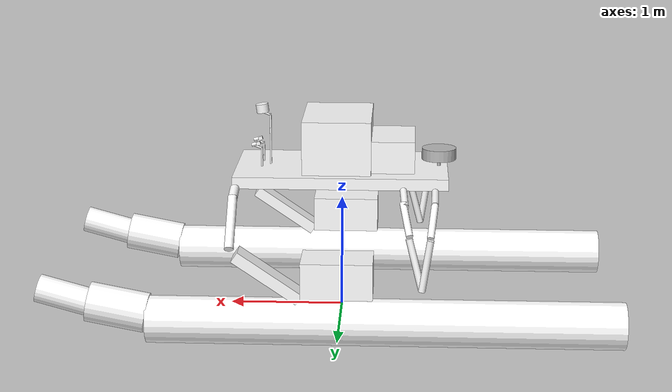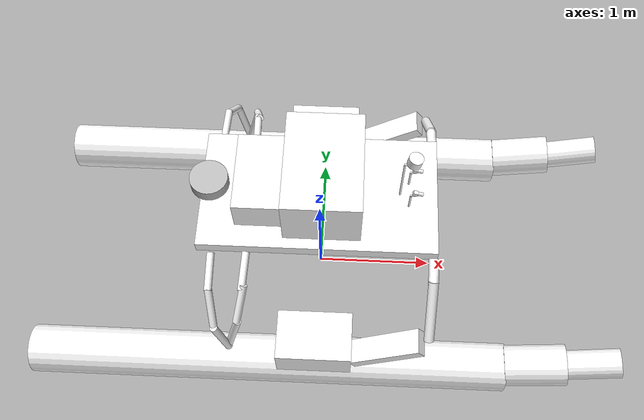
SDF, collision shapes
<?xml version="1.0" ?>
<sdf version='1.10'>
  <model name='WAM-V'>
    <link name='wamv/base_link'>
      <inertial>
        <pose>-0.0046408474923570614 0 0.25250289408128201 0 0 0</pose>
        <mass>249.62585000000001</mass>
        <inertia>
          <ixx>224.2484752353852</ixx>
          <ixy>0</ixy>
          <ixz>1.3323415055278161</ixz>
          <iyy>453.18088968234161</iyy>
          <iyz>0</iyz>
          <izz>499.50580567617101</izz>
        </inertia>
      </inertial>
      <collision name='wamv/base_link_fixed_joint_lump__left_float_collision'>
        <pose>-0.40000000000000002 1.03 0.20000000000000001 0 1.5707963267948966 0</pose>
        <geometry>
          <cylinder>
            <length>4</length>
            <radius>0.20000000000000001</radius>
          </cylinder>
        </geometry>
      </collision>
      <collision name='wamv/base_link_fixed_joint_lump__left_mid_float_collision_1'>
        <pose>1.8500000000000001 1.03 0.29999999999999999 0 1.3799999999999997 0</pose>
        <geometry>
          <cylinder>
            <length>0.5</length>
            <radius>0.17000000000000001</radius>
          </cylinder>
        </geometry>
      </collision>
      <collision name='wamv/base_link_fixed_joint_lump__left_front_float_collision_2'>
        <pose>2.2999999999999998 1.03 0.40000000000000002 0 1.3 0</pose>
        <geometry>
          <cylinder>
            <length>0.45000000000000001</length>
            <radius>0.12</radius>
          </cylinder>
        </geometry>
      </collision>
      <collision name='wamv/base_link_fixed_joint_lump__front_left_beam_lower_collision_3'>
        <pose>0.90000000000000002 0.84999999999999998 1 0.78000000000000003 0 0</pose>
        <geometry>
          <cylinder>
            <length>0.5</length>
            <radius>0.040000000000000001</radius>
          </cylinder>
        </geometry>
      </collision>
      <collision name='wamv/base_link_fixed_joint_lump__front_left_beam_upper_collision_4'>
        <pose>0.90000000000000002 0.59999999999999998 1.1799999999999999 1.3500000000000001 0 0</pose>
        <geometry>
          <cylinder>
            <length>0.20000000000000001</length>
            <radius>0.040000000000000001</radius>
          </cylinder>
        </geometry>
      </collision>
      <collision name='wamv/base_link_fixed_joint_lump__mid_left_beam_lower_collision_5'>
        <pose>-0.65000000000000002 0.98999999999999999 0.69999999999999996 0.099999999999999978 0.25000000000000006 0</pose>
        <geometry>
          <cylinder>
            <length>0.45000000000000001</length>
            <radius>0.029999999999999999</radius>
          </cylinder>
        </geometry>
      </collision>
      <collision name='wamv/base_link_fixed_joint_lump__mid_left_beam_medium_collision_6'>
        <pose>-0.56999999999999995 0.87 1.05 0.75000000000000033 0.25000000000000017 0</pose>
        <geometry>
          <cylinder>
            <length>0.32000000000000001</length>
            <radius>0.029999999999999999</radius>
          </cylinder>
        </geometry>
      </collision>
      <collision name='wamv/base_link_fixed_joint_lump__mid_left_beam_upper_collision_7'>
        <pose>-0.55000000000000004 0.65000000000000002 1.1699999999999999 1.3500000000000001 0.25000000000000011 0</pose>
        <geometry>
          <cylinder>
            <length>0.29999999999999999</length>
            <radius>0.029999999999999999</radius>
          </cylinder>
        </geometry>
      </collision>
      <collision name='wamv/base_link_fixed_joint_lump__rear_left_beam_lower_collision_8'>
        <pose>-0.73999999999999999 1.03 0.69999999999999996 0 -0.14999999999999999 0</pose>
        <geometry>
          <cylinder>
            <length>0.45000000000000001</length>
            <radius>0.029999999999999999</radius>
          </cylinder>
        </geometry>
      </collision>
      <collision name='wamv/base_link_fixed_joint_lump__rear_left_beam_medium_collision_9'>
        <pose>-0.79000000000000004 0.91000000000000003 1.05 0.75000000000000022 -0.14999999999999999 -1.4035390109491176e-17</pose>
        <geometry>
          <cylinder>
            <length>0.32000000000000001</length>
            <radius>0.029999999999999999</radius>
          </cylinder>
        </geometry>
      </collision>
      <collision name='wamv/base_link_fixed_joint_lump__rear_left_beam_upper_collision_10'>
        <pose>-0.81000000000000005 0.67000000000000004 1.1799999999999999 1.45 -0.14999999999999999 0</pose>
        <geometry>
          <cylinder>
            <length>0.29999999999999999</length>
            <radius>0.029999999999999999</radius>
          </cylinder>
        </geometry>
      </collision>
      <collision name='wamv/base_link_fixed_joint_lump__left_joint_collision_11'>
        <pose>0.57999999999999996 1.03 0.59999999999999998 0 -0.59999999999999987 0</pose>
        <geometry>
          <box>
            <size>0.65000000000000002 0.20000000000000001 0.10000000000000001</size>
          </box>
        </geometry>
      </collision>
      <collision name='wamv/base_link_fixed_joint_lump__right_float_collision_12'>
        <pose>-0.40000000000000002 -1.03 0.20000000000000001 0 1.5707963267948966 0</pose>
        <geometry>
          <cylinder>
            <length>4</length>
            <radius>0.20000000000000001</radius>
          </cylinder>
        </geometry>
      </collision>
      <collision name='wamv/base_link_fixed_joint_lump__right_mid_float_collision_13'>
        <pose>1.8500000000000001 -1.03 0.29999999999999999 0 1.3799999999999997 0</pose>
        <geometry>
          <cylinder>
            <length>0.5</length>
            <radius>0.17000000000000001</radius>
          </cylinder>
        </geometry>
      </collision>
      <collision name='wamv/base_link_fixed_joint_lump__right_front_float_collision_14'>
        <pose>2.2999999999999998 -1.03 0.40000000000000002 0 1.3 0</pose>
        <geometry>
          <cylinder>
            <length>0.45000000000000001</length>
            <radius>0.12</radius>
          </cylinder>
        </geometry>
      </collision>
      <collision name='wamv/base_link_fixed_joint_lump__front_right_beam_lower_collision_15'>
        <pose>0.90000000000000002 -0.84999999999999998 1 -0.78000000000000003 0 0</pose>
        <geometry>
          <cylinder>
            <length>0.5</length>
            <radius>0.040000000000000001</radius>
          </cylinder>
        </geometry>
      </collision>
      <collision name='wamv/base_link_fixed_joint_lump__front_right_beam_upper_collision_16'>
        <pose>0.90000000000000002 -0.59999999999999998 1.1799999999999999 -1.3500000000000001 0 0</pose>
        <geometry>
          <cylinder>
            <length>0.20000000000000001</length>
            <radius>0.040000000000000001</radius>
          </cylinder>
        </geometry>
      </collision>
      <collision name='wamv/base_link_fixed_joint_lump__mid_right_beam_lower_collision_17'>
        <pose>-0.65000000000000002 -0.98999999999999999 0.69999999999999996 -0.099999999999999978 0.25000000000000006 0</pose>
        <geometry>
          <cylinder>
            <length>0.45000000000000001</length>
            <radius>0.029999999999999999</radius>
          </cylinder>
        </geometry>
      </collision>
      <collision name='wamv/base_link_fixed_joint_lump__mid_right_beam_medium_collision_18'>
        <pose>-0.56999999999999995 -0.87 1.05 -0.75000000000000033 0.25000000000000017 0</pose>
        <geometry>
          <cylinder>
            <length>0.32000000000000001</length>
            <radius>0.029999999999999999</radius>
          </cylinder>
        </geometry>
      </collision>
      <collision name='wamv/base_link_fixed_joint_lump__mid_right_beam_upper_collision_19'>
        <pose>-0.55000000000000004 -0.65000000000000002 1.1699999999999999 -1.3500000000000001 0.25000000000000011 0</pose>
        <geometry>
          <cylinder>
            <length>0.29999999999999999</length>
            <radius>0.029999999999999999</radius>
          </cylinder>
        </geometry>
      </collision>
      <collision name='wamv/base_link_fixed_joint_lump__rear_right_beam_lower_collision_20'>
        <pose>-0.73999999999999999 -1.03 0.69999999999999996 0 -0.14999999999999999 0</pose>
        <geometry>
          <cylinder>
            <length>0.45000000000000001</length>
            <radius>0.029999999999999999</radius>
          </cylinder>
        </geometry>
      </collision>
      <collision name='wamv/base_link_fixed_joint_lump__rear_right_beam_medium_collision_21'>
        <pose>-0.79000000000000004 -0.91000000000000003 1.05 -0.75000000000000022 -0.14999999999999999 1.4035390109491176e-17</pose>
        <geometry>
          <cylinder>
            <length>0.32000000000000001</length>
            <radius>0.029999999999999999</radius>
          </cylinder>
        </geometry>
      </collision>
      <collision name='wamv/base_link_fixed_joint_lump__rear_right_beam_upper_collision_22'>
        <pose>-0.81000000000000005 -0.67000000000000004 1.1799999999999999 -1.45 -0.14999999999999999 0</pose>
        <geometry>
          <cylinder>
            <length>0.29999999999999999</length>
            <radius>0.029999999999999999</radius>
          </cylinder>
        </geometry>
      </collision>
      <collision name='wamv/base_link_fixed_joint_lump__right_joint_collision_23'>
        <pose>0.57999999999999996 -1.03 0.59999999999999998 0 -0.59999999999999987 0</pose>
        <geometry>
          <box>
            <size>0.65000000000000002 0.20000000000000001 0.10000000000000001</size>
          </box>
        </geometry>
      </collision>
      <collision name='wamv/base_link_fixed_joint_lump__top_base_collision_24'>
        <pose>0 0 1.25 0 0 0</pose>
        <geometry>
          <box>
            <size>1.8500000000000001 1 0.10000000000000001</size>
          </box>
        </geometry>
      </collision>
      <collision name='wamv/base_link_fixed_joint_lump__front_left_camera_post_collision_collision_25'>
        <pose>0.69999999999999996 0.10000000000000001 1.3847499999999999 0 0 0</pose>
        <geometry>
          <cylinder>
            <length>0.17649999999999999</length>
            <radius>0.0076</radius>
          </cylinder>
        </geometry>
      </collision>
      <collision name='wamv/base_link_fixed_joint_lump__front_left_camera_post_arm_collision_collision_26'>
        <pose>0.72999999999999998 0.10000000000000001 1.4730000000000001 -1.2042771838760871 5.5511151231257827e-17 -1.570796326794897</pose>
        <geometry>
          <cylinder>
            <length>0.065000000000000002</length>
            <radius>0.0080000000000000002</radius>
          </cylinder>
        </geometry>
      </collision>
      <collision name='wamv/base_link_fixed_joint_lump__front_left_camera_lens_collision_collision_27'>
        <pose>0.76738666487320317 0.10000000000000001 1.495341257188155 3.1415926535897931 1.3089969389957472 3.1415926535897931</pose>
        <geometry>
          <cylinder>
            <length>0.042000000000000003</length>
            <radius>0.014999999999999999</radius>
          </cylinder>
        </geometry>
      </collision>
      <collision name='wamv/base_link_fixed_joint_lump__front_left_camera_box_collision_collision_28'>
        <pose>0.73019852056107404 0.10000000000000001 1.5053057904246021 0 0.26179938779914941 0</pose>
        <geometry>
          <box>
            <size>0.035999999999999997 0.029999999999999999 0.029999999999999999</size>
          </box>
        </geometry>
      </collision>
      <collision name='wamv/base_link_fixed_joint_lump__front_right_camera_post_collision_collision_29'>
        <pose>0.69999999999999996 -0.10000000000000001 1.3847499999999999 0 0 0</pose>
        <geometry>
          <cylinder>
            <length>0.17649999999999999</length>
            <radius>0.0076</radius>
          </cylinder>
        </geometry>
      </collision>
      <collision name='wamv/base_link_fixed_joint_lump__front_right_camera_post_arm_collision_collision_30'>
        <pose>0.72999999999999998 -0.10000000000000001 1.4730000000000001 -1.2042771838760871 5.5511151231257827e-17 -1.570796326794897</pose>
        <geometry>
          <cylinder>
            <length>0.065000000000000002</length>
            <radius>0.0080000000000000002</radius>
          </cylinder>
        </geometry>
      </collision>
      <collision name='wamv/base_link_fixed_joint_lump__front_right_camera_lens_collision_collision_31'>
        <pose>0.76738666487320317 -0.10000000000000001 1.495341257188155 3.1415926535897931 1.3089969389957472 3.1415926535897931</pose>
        <geometry>
          <cylinder>
            <length>0.042000000000000003</length>
            <radius>0.014999999999999999</radius>
          </cylinder>
        </geometry>
      </collision>
      <collision name='wamv/base_link_fixed_joint_lump__front_right_camera_box_collision_collision_32'>
        <pose>0.73019852056107404 -0.10000000000000001 1.5053057904246021 0 0.26179938779914941 0</pose>
        <geometry>
          <box>
            <size>0.035999999999999997 0.029999999999999999 0.029999999999999999</size>
          </box>
        </geometry>
      </collision>
      <collision name='wamv/base_link_fixed_joint_lump__lidar_wamv_post_collision_collision_33'>
        <pose>0.62999999999999989 0 1.52325 0 0 0</pose>
        <geometry>
          <cylinder>
            <length>0.45350000000000013</length>
            <radius>0.0076</radius>
          </cylinder>
        </geometry>
      </collision>
      <collision name='wamv/base_link_fixed_joint_lump__lidar_wamv_post_arm_collision_collision_34'>
        <pose>0.65999999999999992 0 1.75 -1.2042771838760871 5.5511151231257827e-17 -1.570796326794897</pose>
        <geometry>
          <cylinder>
            <length>0.065000000000000002</length>
            <radius>0.0080000000000000002</radius>
          </cylinder>
        </geometry>
      </collision>
      <collision name='wamv/base_link_fixed_joint_lump__lidar_wamv_collision_collision_35'>
        <pose>0.69999999999999996 0 1.8 0 0.13962634015954645 0</pose>
        <geometry>
          <cylinder>
            <length>0.074999999999999997</length>
            <radius>0.055</radius>
          </cylinder>
        </geometry>
      </collision>
      <collision name='wamv/base_link_fixed_joint_lump__cpu_case_1_collision_collision_36'>
        <pose>0.035000000000000003 0 1.53 0 0 0</pose>
        <geometry>
          <box>
            <size>0.59499999999999997 0.82999999999999996 0.46999999999999997</size>
          </box>
        </geometry>
      </collision>
      <collision name='wamv/base_link_fixed_joint_lump__cpu_case_2_collision_collision_37'>
        <pose>-0.45000000000000001 0 1.4379999999999999 0 0 0</pose>
        <geometry>
          <box>
            <size>0.375 0.64000000000000001 0.28000000000000003</size>
          </box>
        </geometry>
      </collision>
      <collision name='wamv/base_link_fixed_joint_lump__left_battery_collision_collision_38'>
        <pose>0 1 0.59999999999999998 0 0 0</pose>
        <geometry>
          <box>
            <size>0.59999999999999998 0.40000000000000002 0.31</size>
          </box>
        </geometry>
      </collision>
      <collision name='wamv/base_link_fixed_joint_lump__right_battery_collision_collision_39'>
        <pose>0 -1 0.59999999999999998 0 0 0</pose>
        <geometry>
          <box>
            <size>0.59999999999999998 0.40000000000000002 0.31</size>
          </box>
        </geometry>
      </collision>
      <visual name='wamv/base_link_visual'>
        <pose>0 0 0 0 0 0</pose>
        <geometry>
          <mesh>
            <scale>1 1 1</scale>
            <uri>model://wamv_description/models/WAM-V-Base/mesh/WAM-V-Base.dae</uri>
          </mesh>
        </geometry>
        <material>
          <diffuse>1 1 1 1</diffuse>
          <specular>1 1 1 1</specular>
          <pbr>
            <metal>
              <albedo_map>model://wamv_description/models/WAM-V-Base/mesh/WAM-V_Albedo.png</albedo_map>
              <normal_map>model://wamv_description/models/WAM-V-Base/mesh/WAM-V_Normal.png</normal_map>
              <roughness_map>model://wamv_description/models/WAM-V-Base/mesh/WAM-V_Roughness.png</roughness_map>
              <metalness_map>model://wamv_description/models/WAM-V-Base/mesh/WAM-V_Metalness.png</metalness_map>
            </metal>
          </pbr>
        </material>
      </visual>
      <visual name='wamv/base_link_fixed_joint_lump__wamv/front_left_camera_post_link_visual_1'>
        <pose>0.69999999999999996 0.10000000000000001 1.3847499999999999 0 0 0</pose>
        <geometry>
          <cylinder>
            <length>0.17649999999999999</length>
            <radius>0.0076</radius>
          </cylinder>
        </geometry>
        <material>
          <diffuse>0 0 0 1</diffuse>
          <ambient>0 0 0 1</ambient>
        </material>
      </visual>
      <visual name='wamv/base_link_fixed_joint_lump__front_left_camera_post_arm_visual_visual_2'>
        <pose>0.69199999999999995 0.10000000000000001 1.47 -1.0471975511965981 5.5511151231257827e-17 -1.570796326794897</pose>
        <geometry>
          <mesh>
            <scale>1 1 1</scale>
            <uri>model://vrx_gazebo/models/sensor_post/mesh/sensor_post_arm.dae</uri>
          </mesh>
        </geometry>
      </visual>
      <visual name='wamv/base_link_fixed_joint_lump__wamv/front_left_camera_link_visual_3'>
        <pose>0.71812444773246065 0.10000000000000001 1.5085410284883829 0.26179938779914941 2.7755575615628914e-17 1.570796326794897</pose>
        <geometry>
          <mesh>
            <scale>1 1 1</scale>
            <uri>model://vrx_gazebo/models/mono_camera/mesh/mono_camera.dae</uri>
          </mesh>
        </geometry>
        <material>
          <diffuse>1 1 1 1</diffuse>
          <specular>1 1 1 1</specular>
          <pbr>
            <metal>
              <albedo_map>model://vrx_gazebo/models/mono_camera/mesh/mono_camera_Albedo.png</albedo_map>
              <normal_map>model://vrx_gazebo/models/mono_camera/mesh/mono_camera_Normal.png</normal_map>
              <roughness_map>model://vrx_gazebo/models/mono_camera/mesh/mono_camera_Roughness.png</roughness_map>
              <metalness_map>model://vrx_gazebo/models/mono_camera/mesh/mono_camera_Metalness.png</metalness_map>
            </metal>
          </pbr>
        </material>
      </visual>
      <visual name='wamv/base_link_fixed_joint_lump__wamv/front_right_camera_post_link_visual_4'>
        <pose>0.69999999999999996 -0.10000000000000001 1.3847499999999999 0 0 0</pose>
        <geometry>
          <cylinder>
            <length>0.17649999999999999</length>
            <radius>0.0076</radius>
          </cylinder>
        </geometry>
        <material>
          <diffuse>0 0 0 1</diffuse>
          <ambient>0 0 0 1</ambient>
        </material>
      </visual>
      <visual name='wamv/base_link_fixed_joint_lump__front_right_camera_post_arm_visual_visual_5'>
        <pose>0.69199999999999995 -0.10000000000000001 1.47 -1.0471975511965981 5.5511151231257827e-17 -1.570796326794897</pose>
        <geometry>
          <mesh>
            <scale>1 1 1</scale>
            <uri>model://vrx_gazebo/models/sensor_post/mesh/sensor_post_arm.dae</uri>
          </mesh>
        </geometry>
      </visual>
      <visual name='wamv/base_link_fixed_joint_lump__wamv/front_right_camera_link_visual_6'>
        <pose>0.71812444773246065 -0.10000000000000001 1.5085410284883829 0.26179938779914941 2.7755575615628914e-17 1.570796326794897</pose>
        <geometry>
          <mesh>
            <scale>1 1 1</scale>
            <uri>model://vrx_gazebo/models/mono_camera/mesh/mono_camera.dae</uri>
          </mesh>
        </geometry>
        <material>
          <diffuse>1 1 1 1</diffuse>
          <specular>1 1 1 1</specular>
          <pbr>
            <metal>
              <albedo_map>model://vrx_gazebo/models/mono_camera/mesh/mono_camera_Albedo.png</albedo_map>
              <normal_map>model://vrx_gazebo/models/mono_camera/mesh/mono_camera_Normal.png</normal_map>
              <roughness_map>model://vrx_gazebo/models/mono_camera/mesh/mono_camera_Roughness.png</roughness_map>
              <metalness_map>model://vrx_gazebo/models/mono_camera/mesh/mono_camera_Metalness.png</metalness_map>
            </metal>
          </pbr>
        </material>
      </visual>
      <visual name='wamv/base_link_fixed_joint_lump__wamv/lidar_wamv_post_link_visual_7'>
        <pose>0.62999999999999989 0 1.52325 0 0 0</pose>
        <geometry>
          <cylinder>
            <length>0.45350000000000013</length>
            <radius>0.0076</radius>
          </cylinder>
        </geometry>
        <material>
          <diffuse>0 0 0 1</diffuse>
          <ambient>0 0 0 1</ambient>
        </material>
      </visual>
      <visual name='wamv/base_link_fixed_joint_lump__lidar_wamv_post_arm_visual_visual_8'>
        <pose>0.62199999999999989 0 1.7470000000000001 -1.0471975511965981 5.5511151231257827e-17 -1.570796326794897</pose>
        <geometry>
          <mesh>
            <scale>1 1 1</scale>
            <uri>model://vrx_gazebo/models/sensor_post/mesh/sensor_post_arm.dae</uri>
          </mesh>
        </geometry>
      </visual>
      <visual name='wamv/base_link_fixed_joint_lump__wamv/lidar_wamv_link_visual_9'>
        <pose>0.69512894146639759 0 1.7653406175940449 0 0.13962634015954645 0</pose>
        <geometry>
          <mesh>
            <scale>1 1 1</scale>
            <uri>model://vrx_gazebo/models/3d_lidar/mesh/3d_lidar.dae</uri>
          </mesh>
        </geometry>
        <material>
          <diffuse>1 1 1 1</diffuse>
          <specular>1 1 1 1</specular>
          <pbr>
            <metal>
              <albedo_map>model://vrx_gazebo/models/3d_lidar/mesh/3d_Lidar_Albedo.png</albedo_map>
              <normal_map>model://vrx_gazebo/models/3d_lidar/mesh/3d_Lidar_Normal.png</normal_map>
              <roughness_map>model://vrx_gazebo/models/3d_lidar/mesh/3d_Lidar_Roughness.png</roughness_map>
              <metalness_map>model://vrx_gazebo/models/3d_lidar/mesh/3d_Lidar_Metalness.png</metalness_map>
            </metal>
          </pbr>
        </material>
      </visual>
      <visual name='wamv/base_link_fixed_joint_lump__wamv/cpu_cases_link_visual_10'>
        <pose>-0.076999999999999999 0 0 0 0 0</pose>
        <geometry>
          <mesh>
            <scale>1 1 1</scale>
            <uri>model://vrx_gazebo/models/cpu_cases/mesh/cpu_cases.dae</uri>
          </mesh>
        </geometry>
        <material>
          <diffuse>1 1 1 1</diffuse>
          <specular>1 1 1 1</specular>
          <pbr>
            <metal>
              <albedo_map>model://vrx_gazebo/models/cpu_cases/mesh/cpu_cases_Albedo.png</albedo_map>
              <normal_map>model://vrx_gazebo/models/cpu_cases/mesh/cpu_cases_Normal.png</normal_map>
              <roughness_map>model://vrx_gazebo/models/cpu_cases/mesh/cpu_cases_Roughness.png</roughness_map>
              <metalness_map>model://vrx_gazebo/models/cpu_cases/mesh/cpu_cases_Metalness.png</metalness_map>
            </metal>
          </pbr>
        </material>
      </visual>
      <visual name='wamv/base_link_fixed_joint_lump__wamv/left_battery_link_visual_11'>
        <pose>0 -0.03000000000000003 0 0 0 0</pose>
        <geometry>
          <mesh>
            <scale>1 1 1</scale>
            <uri>model://vrx_gazebo/models/battery/mesh/battery.dae</uri>
          </mesh>
        </geometry>
        <material>
          <diffuse>1 1 1 1</diffuse>
          <specular>1 1 1 1</specular>
          <pbr>
            <metal>
              <albedo_map>model://vrx_gazebo/models/battery/mesh/battery_Albedo.png</albedo_map>
              <normal_map>model://vrx_gazebo/models/battery/mesh/battery_Normal.png</normal_map>
              <roughness_map>model://vrx_gazebo/models/battery/mesh/battery_Roughness.png</roughness_map>
              <metalness_map>model://vrx_gazebo/models/battery/mesh/battery_Metalness.png</metalness_map>
            </metal>
          </pbr>
        </material>
      </visual>
      <visual name='wamv/base_link_fixed_joint_lump__wamv/right_battery_link_visual_12'>
        <pose>0 -2.0299999999999998 0 0 0 0</pose>
        <geometry>
          <mesh>
            <scale>1 1 1</scale>
            <uri>model://vrx_gazebo/models/battery/mesh/battery.dae</uri>
          </mesh>
        </geometry>
        <material>
          <diffuse>1 1 1 1</diffuse>
          <specular>1 1 1 1</specular>
          <pbr>
            <metal>
              <albedo_map>model://vrx_gazebo/models/battery/mesh/battery_Albedo.png</albedo_map>
              <normal_map>model://vrx_gazebo/models/battery/mesh/battery_Normal.png</normal_map>
              <roughness_map>model://vrx_gazebo/models/battery/mesh/battery_Roughness.png</roughness_map>
              <metalness_map>model://vrx_gazebo/models/battery/mesh/battery_Metalness.png</metalness_map>
            </metal>
          </pbr>
        </material>
      </visual>
      <sensor name='contact_sensor' type='contact'>
        <contact>
          <collision>wamv/base_link_fixed_joint_lump__top_base_collision_24</collision>
          <collision>wamv/base_link_fixed_joint_lump__left_float_collision</collision>
          <collision>wamv/base_link_fixed_joint_lump__left_mid_float_collision_1</collision>
          <collision>wamv/base_link_fixed_joint_lump__left_front_float_collision_2</collision>
          <collision>wamv/base_link_fixed_joint_lump__right_float_collision_12</collision>
          <collision>wamv/base_link_fixed_joint_lump__right_mid_float_collision_13</collision>
          <collision>wamv/base_link_fixed_joint_lump__right_front_float_collision_14</collision>
          <topic>/vrx/contacts</topic>
        </contact>
        <always_on>true</always_on>
        <update_rate>5</update_rate>
      </sensor>
      <sensor name='front_left_camera_sensor' type='camera'>
        <update_rate>30</update_rate>
        <camera name='front_left_camera_camera'>
          <horizontal_fov>1.3962634</horizontal_fov>
          <image>
            <width>1280</width>
            <height>720</height>
            <format>R8G8B8</format>
          </image>
          <clip>
            <near>0.050000000000000003</near>
            <far>400</far>
          </clip>
          <noise>
            <type>gaussian</type>
            <mean>0</mean>
            <stddev>0.0070000000000000001</stddev>
          </noise>
        </camera>
        <pose>0.75 0.10000000000000001 1.5 0 0.261799 0</pose>
      </sensor>
      <sensor name='front_right_camera_sensor' type='camera'>
        <update_rate>30</update_rate>
        <camera name='front_right_camera_camera'>
          <horizontal_fov>1.3962634</horizontal_fov>
          <image>
            <width>1280</width>
            <height>720</height>
            <format>R8G8B8</format>
          </image>
          <clip>
            <near>0.050000000000000003</near>
            <far>400</far>
          </clip>
          <noise>
            <type>gaussian</type>
            <mean>0</mean>
            <stddev>0.0070000000000000001</stddev>
          </noise>
        </camera>
        <pose>0.75 -0.10000000000000001 1.5 0 0.261799 0</pose>
      </sensor>
      <sensor name='lidar_wamv_sensor' type='gpu_ray'>
        <update_rate>10</update_rate>
        <ray>
          <scan>
            <horizontal>
              <samples>1875</samples>
              <resolution>1</resolution>
              <min_angle>-3.1415926535897931</min_angle>
              <max_angle>3.1415926535897931</max_angle>
            </horizontal>
            <vertical>
              <samples>16</samples>
              <resolution>1</resolution>
              <min_angle>-0.26179938779914941</min_angle>
              <max_angle>0.26179938779914941</max_angle>
            </vertical>
          </scan>
          <range>
            <min>0.10000000000000001</min>
            <max>130</max>
          </range>
          <noise>
            <type>gaussian</type>
            <mean>0</mean>
            <stddev>0.01</stddev>
          </noise>
        </ray>
        <pose>0.69999999999999996 0 1.8 0 0.139626 0</pose>
      </sensor>
    </link>
    <joint name='wamv/gps_wamv_joint' type='revolute'>
      <pose relative_to='wamv/base_link'>-0.84999999999999998 0 1.3 0 0 0</pose>
      <parent>wamv/base_link</parent>
      <child>wamv/gps_wamv_link</child>
      <axis>
        <xyz>0 0 1</xyz>
        <limit>
          <lower>0</lower>
          <upper>0</upper>
          <effort>1000</effort>
          <velocity>0</velocity>
        </limit>
        <dynamics>
          <spring_reference>0</spring_reference>
          <spring_stiffness>0</spring_stiffness>
        </dynamics>
      </axis>
    </joint>
    <link name='wamv/gps_wamv_link'>
      <pose relative_to='wamv/gps_wamv_joint'>0 0 0 0 0 0</pose>
      <inertial>
        <pose>0 0 0 0 0 0</pose>
        <mass>1</mass>
        <inertia>
          <ixx>0.0064580000000000002</ixx>
          <ixy>0</ixy>
          <ixz>0</ixz>
          <iyy>0.0064580000000000002</iyy>
          <iyz>0</iyz>
          <izz>0.01125</izz>
        </inertia>
      </inertial>
      <collision name='wamv/gps_wamv_link_fixed_joint_lump__gps_wamv_collision_base_collision'>
        <pose>0 0 0.025000000000000001 0 0 0</pose>
        <geometry>
          <cylinder>
            <length>0.050000000000000003</length>
            <radius>0.014999999999999999</radius>
          </cylinder>
        </geometry>
      </collision>
      <collision name='wamv/gps_wamv_link_fixed_joint_lump__gps_wamv_collision_antenna_collision_1'>
        <pose>0 0 0.11 0 0 0</pose>
        <geometry>
          <cylinder>
            <length>0.10000000000000001</length>
            <radius>0.14999999999999999</radius>
          </cylinder>
        </geometry>
      </collision>
      <visual name='wamv/gps_wamv_link_fixed_joint_lump__gps_wamv_visual_visual'>
        <pose>0 0 0 0 0 0</pose>
        <geometry>
          <mesh>
            <scale>1 1 1</scale>
            <uri>model://wamv_gazebo/models/gps/mesh/gps.dae</uri>
          </mesh>
        </geometry>
      </visual>
      <sensor name='navsat' type='navsat'>
        <always_on>true</always_on>
        <update_rate>20</update_rate>
      </sensor>
    </link>
    <joint name='wamv/imu_wamv_joint' type='revolute'>
      <pose relative_to='wamv/base_link'>0.29999999999999999 -0.20000000000000001 1.3 0 0 0</pose>
      <parent>wamv/base_link</parent>
      <child>wamv/imu_wamv_link</child>
      <axis>
        <xyz>0 0 1</xyz>
        <limit>
          <lower>0</lower>
          <upper>0</upper>
          <effort>1000</effort>
          <velocity>0</velocity>
        </limit>
        <dynamics>
          <spring_reference>0</spring_reference>
          <spring_stiffness>0</spring_stiffness>
        </dynamics>
      </axis>
    </joint>
    <link name='wamv/imu_wamv_link'>
      <pose relative_to='wamv/imu_wamv_joint'>0 0 0 0 0 0</pose>
      <inertial>
        <pose>0 0 0 0 0 0</pose>
        <mass>0.10000000000000001</mass>
        <inertia>
          <ixx>5.4199999999999998e-06</ixx>
          <ixy>0</ixy>
          <ixz>0</ixz>
          <iyy>2.1039999999999998e-05</iyy>
          <iyz>0</iyz>
          <izz>2.6040000000000001e-05</izz>
        </inertia>
      </inertial>
      <collision name='wamv/imu_wamv_link_fixed_joint_lump__imu_wamv_collision_collision'>
        <pose>0 0 0 0 0 0</pose>
        <geometry>
          <box>
            <size>0.050000000000000003 0.025000000000000001 0.0050000000000000001</size>
          </box>
        </geometry>
      </collision>
      <visual name='wamv/imu_wamv_link_fixed_joint_lump__imu_wamv_visual_visual'>
        <pose>0 0 0 0 0 0</pose>
        <geometry>
          <box>
            <size>0.050000000000000003 0.025000000000000001 0.0050000000000000001</size>
          </box>
        </geometry>
        <material>
          <diffuse>1 0 0 1</diffuse>
          <ambient>1 0 0 1</ambient>
        </material>
      </visual>
      <sensor name='imu_wamv_sensor' type='imu'>
        <update_rate>100</update_rate>
        <imu>
          <angular_velocity>
            <x>
              <noise type='gaussian'>
                <mean>0</mean>
                <stddev>0.0089999999999999993</stddev>
                <bias_mean>0.00075000000000000002</bias_mean>
                <bias_stddev>0.0050000000000000001</bias_stddev>
                <dynamic_bias_stddev>2.0000000000000002e-05</dynamic_bias_stddev>
                <dynamic_bias_correlation_time>400</dynamic_bias_correlation_time>
                <precision>0.00025000000000000001</precision>
              </noise>
            </x>
            <y>
              <noise type='gaussian'>
                <mean>0</mean>
                <stddev>0.0089999999999999993</stddev>
                <bias_mean>0.00075000000000000002</bias_mean>
                <bias_stddev>0.0050000000000000001</bias_stddev>
                <dynamic_bias_stddev>2.0000000000000002e-05</dynamic_bias_stddev>
                <dynamic_bias_correlation_time>400</dynamic_bias_correlation_time>
                <precision>0.00025000000000000001</precision>
              </noise>
            </y>
            <z>
              <noise type='gaussian'>
                <mean>0</mean>
                <stddev>0.0089999999999999993</stddev>
                <bias_mean>0.00075000000000000002</bias_mean>
                <bias_stddev>0.0050000000000000001</bias_stddev>
                <dynamic_bias_stddev>2.0000000000000002e-05</dynamic_bias_stddev>
                <dynamic_bias_correlation_time>400</dynamic_bias_correlation_time>
                <precision>0.00025000000000000001</precision>
              </noise>
            </z>
          </angular_velocity>
          <linear_acceleration>
            <x>
              <noise type='gaussian'>
                <mean>0</mean>
                <stddev>0.021000000000000001</stddev>
                <bias_mean>0.050000000000000003</bias_mean>
                <bias_stddev>0.0074999999999999997</bias_stddev>
                <dynamic_bias_stddev>0.00037500000000000001</dynamic_bias_stddev>
                <dynamic_bias_correlation_time>175</dynamic_bias_correlation_time>
                <precision>0.0050000000000000001</precision>
              </noise>
            </x>
            <y>
              <noise type='gaussian'>
                <mean>0</mean>
                <stddev>0.021000000000000001</stddev>
                <bias_mean>0.050000000000000003</bias_mean>
                <bias_stddev>0.0074999999999999997</bias_stddev>
                <dynamic_bias_stddev>0.00037500000000000001</dynamic_bias_stddev>
                <dynamic_bias_correlation_time>175</dynamic_bias_correlation_time>
                <precision>0.0050000000000000001</precision>
              </noise>
            </y>
            <z>
              <noise type='gaussian'>
                <mean>0</mean>
                <stddev>0.021000000000000001</stddev>
                <bias_mean>0.050000000000000003</bias_mean>
                <bias_stddev>0.0074999999999999997</bias_stddev>
                <dynamic_bias_stddev>0.00037500000000000001</dynamic_bias_stddev>
                <dynamic_bias_correlation_time>175</dynamic_bias_correlation_time>
                <precision>0.0050000000000000001</precision>
              </noise>
            </z>
          </linear_acceleration>
          <orientation_reference_frame>
            <localization>ENU</localization>
          </orientation_reference_frame>
        </imu>
      </sensor>
    </link>
    <enable_wind>true</enable_wind>
    <plugin name='vrx::Surface' filename='libSurface.so'>
      <link_name>wamv/base_link</link_name>
      <hull_length>4.9</hull_length>
      <hull_radius>0.213</hull_radius>
      <fluid_level>0</fluid_level>
      <points>
        <point>0.6 1.03 0</point>
        <point>-1.4 1.03 0</point>
      </points>
      <wavefield>
        <topic>/vrx/wavefield/parameters</topic>
      </wavefield>
    </plugin>
    <plugin name='vrx::Surface' filename='libSurface.so'>
      <link_name>wamv/base_link</link_name>
      <hull_length>4.9</hull_length>
      <hull_radius>0.213</hull_radius>
      <fluid_level>0</fluid_level>
      <points>
        <point>0.6 -1.03 0</point>
        <point>-1.4 -1.03 0</point>
      </points>
      <wavefield>
        <topic>/vrx/wavefield/parameters</topic>
      </wavefield>
    </plugin>
    <plugin name='vrx::SimpleHydrodynamics' filename='libSimpleHydrodynamics.so'>
      <link_name>wamv/base_link</link_name>
      <xDotU>0.0</xDotU>
      <yDotV>0.0</yDotV>
      <nDotR>0.0</nDotR>
      <xU>100.0</xU>
      <xUU>150.0</xUU>
      <yV>100.0</yV>
      <yVV>100.0</yVV>
      <zW>500.0</zW>
      <kP>300.0</kP>
      <kPP>600.0</kPP>
      <mQ>900.0</mQ>
      <mQQ>900.0</mQQ>
      <nR>800.0</nR>
      <nRR>800.0</nRR>
    </plugin>
    <plugin name='gz::sim::systems::DetachableJoint' filename='gz-sim-detachable-joint-system'>
      <parent_link>wamv/base_link</parent_link>
      <child_model>platform</child_model>
      <child_link>dummy_upper</child_link>
      <topic>/vrx/release</topic>
      <suppress_child_warning>true</suppress_child_warning>
    </plugin>
    <plugin name='gz::sim::systems::PosePublisher' filename='libgz-sim-pose-publisher-system.so'>
      <publish_link_pose>false</publish_link_pose>
      <publish_sensor_pose>true</publish_sensor_pose>
      <publish_collision_pose>false</publish_collision_pose>
      <publish_visual_pose>false</publish_visual_pose>
      <publish_nested_model_pose>false</publish_nested_model_pose>
      <publish_model_pose>false</publish_model_pose>
      <use_pose_vector_msg>true</use_pose_vector_msg>
      <static_publisher>false</static_publisher>
      <static_update_frequency>1</static_update_frequency>
    </plugin>
    <plugin name='gz::sim::systems::JointStatePublisher' filename='gz-sim-joint-state-publisher-system'/>
    <frame name='wamv/front_left_camera_to_front_left_camera_link_optical_joint' attached_to='wamv/front_left_camera_link'>
      <pose>0 0 0 -1.5707963267948959 -5.5511151231257827e-17 -1.5707963267948959</pose>
    </frame>
    <frame name='wamv/front_left_camera_link_optical' attached_to='wamv/front_left_camera_to_front_left_camera_link_optical_joint'>
      <pose>0 0 0 0 0 0</pose>
    </frame>
    <frame name='wamv/front_left_camera_post_arm_to_front_left_camera_joint' attached_to='wamv/front_left_camera_post_arm_link'>
      <pose>0.02 0 0.027 0 0.26179938779914941 0</pose>
    </frame>
    <frame name='wamv/front_left_camera_link' attached_to='wamv/front_left_camera_post_arm_to_front_left_camera_joint'>
      <pose>0 0 0 0 0 0</pose>
    </frame>
    <frame name='wamv/front_left_camera_post_to_front_left_camera_post_arm_joint' attached_to='wamv/front_left_camera_post_link'>
      <pose>0.029999999999999999 0 0.088250000000000078 0 0 0</pose>
    </frame>
    <frame name='wamv/front_left_camera_post_arm_link' attached_to='wamv/front_left_camera_post_to_front_left_camera_post_arm_joint'>
      <pose>0 0 0 0 0 0</pose>
    </frame>
    <frame name='wamv/base_to_front_left_camera_post_joint' attached_to='wamv/base_link'>
      <pose>0.69999999999999996 0.10000000000000001 1.3847499999999999 0 0 0</pose>
    </frame>
    <frame name='wamv/front_left_camera_post_link' attached_to='wamv/base_to_front_left_camera_post_joint'>
      <pose>0 0 0 0 0 0</pose>
    </frame>
    <frame name='wamv/front_right_camera_to_front_right_camera_link_optical_joint' attached_to='wamv/front_right_camera_link'>
      <pose>0 0 0 -1.5707963267948959 -5.5511151231257827e-17 -1.5707963267948959</pose>
    </frame>
    <frame name='wamv/front_right_camera_link_optical' attached_to='wamv/front_right_camera_to_front_right_camera_link_optical_joint'>
      <pose>0 0 0 0 0 0</pose>
    </frame>
    <frame name='wamv/front_right_camera_post_arm_to_front_right_camera_joint' attached_to='wamv/front_right_camera_post_arm_link'>
      <pose>0.02 0 0.027 0 0.26179938779914941 0</pose>
    </frame>
    <frame name='wamv/front_right_camera_link' attached_to='wamv/front_right_camera_post_arm_to_front_right_camera_joint'>
      <pose>0 0 0 0 0 0</pose>
    </frame>
    <frame name='wamv/front_right_camera_post_to_front_right_camera_post_arm_joint' attached_to='wamv/front_right_camera_post_link'>
      <pose>0.029999999999999999 0 0.088250000000000078 0 0 0</pose>
    </frame>
    <frame name='wamv/front_right_camera_post_arm_link' attached_to='wamv/front_right_camera_post_to_front_right_camera_post_arm_joint'>
      <pose>0 0 0 0 0 0</pose>
    </frame>
    <frame name='wamv/base_to_front_right_camera_post_joint' attached_to='wamv/base_link'>
      <pose>0.69999999999999996 -0.10000000000000001 1.3847499999999999 0 0 0</pose>
    </frame>
    <frame name='wamv/front_right_camera_post_link' attached_to='wamv/base_to_front_right_camera_post_joint'>
      <pose>0 0 0 0 0 0</pose>
    </frame>
    <frame name='wamv/lidar_wamv_post_arm_to_lidar_wamv_joint' attached_to='wamv/lidar_wamv_post_arm_link'>
      <pose>0.040000000000000001 0 0.050000000000000003 0 0.13962634015954656 0</pose>
    </frame>
    <frame name='wamv/lidar_wamv_link' attached_to='wamv/lidar_wamv_post_arm_to_lidar_wamv_joint'>
      <pose>0 0 0 0 0 0</pose>
    </frame>
    <frame name='wamv/lidar_wamv_post_to_lidar_wamv_post_arm_joint' attached_to='wamv/lidar_wamv_post_link'>
      <pose>0.029999999999999999 0 0.22675000000000009 0 0 0</pose>
    </frame>
    <frame name='wamv/lidar_wamv_post_arm_link' attached_to='wamv/lidar_wamv_post_to_lidar_wamv_post_arm_joint'>
      <pose>0 0 0 0 0 0</pose>
    </frame>
    <frame name='wamv/base_to_lidar_wamv_post_joint' attached_to='wamv/base_link'>
      <pose>0.62999999999999989 0 1.52325 0 0 0</pose>
    </frame>
    <frame name='wamv/lidar_wamv_post_link' attached_to='wamv/base_to_lidar_wamv_post_joint'>
      <pose>0 0 0 0 0 0</pose>
    </frame>
    <frame name='wamv/chasis_cpu_cases_joint' attached_to='wamv/base_link'>
      <pose>-0.14999999999999999 0 1.53 0 0 0</pose>
    </frame>
    <frame name='wamv/cpu_cases_link' attached_to='wamv/chasis_cpu_cases_joint'>
      <pose>0 0 0 0 0 0</pose>
    </frame>
    <frame name='wamv/left_chasis_battery_joint' attached_to='wamv/base_link'>
      <pose>0 1 0.45000000000000001 0 0 0</pose>
    </frame>
    <frame name='wamv/left_battery_link' attached_to='wamv/left_chasis_battery_joint'>
      <pose>0 0 0 0 0 0</pose>
    </frame>
    <frame name='wamv/right_chasis_battery_joint' attached_to='wamv/base_link'>
      <pose>0 -1 0.45000000000000001 0 0 0</pose>
    </frame>
    <frame name='wamv/right_battery_link' attached_to='wamv/right_chasis_battery_joint'>
      <pose>0 0 0 0 0 0</pose>
    </frame>
  </model>
</sdf>
